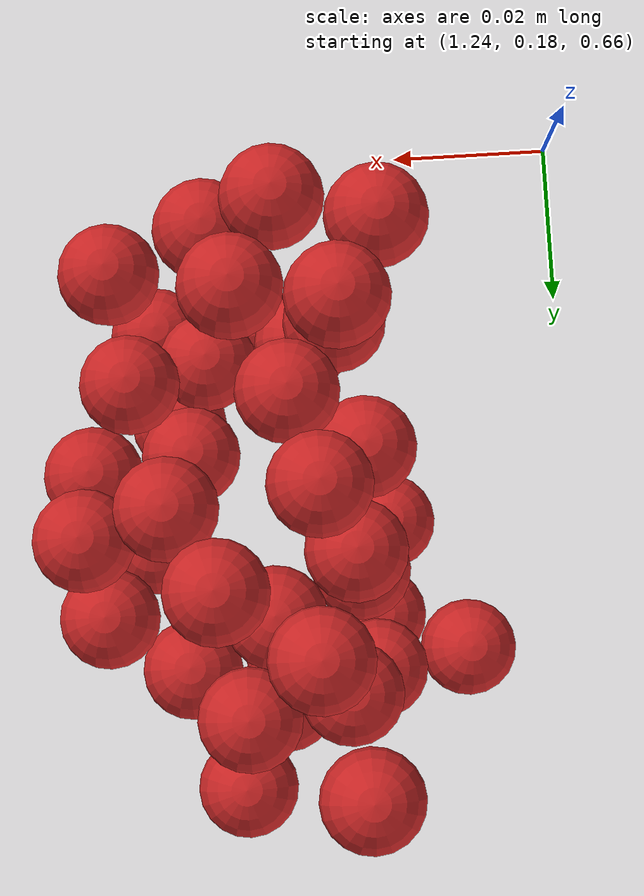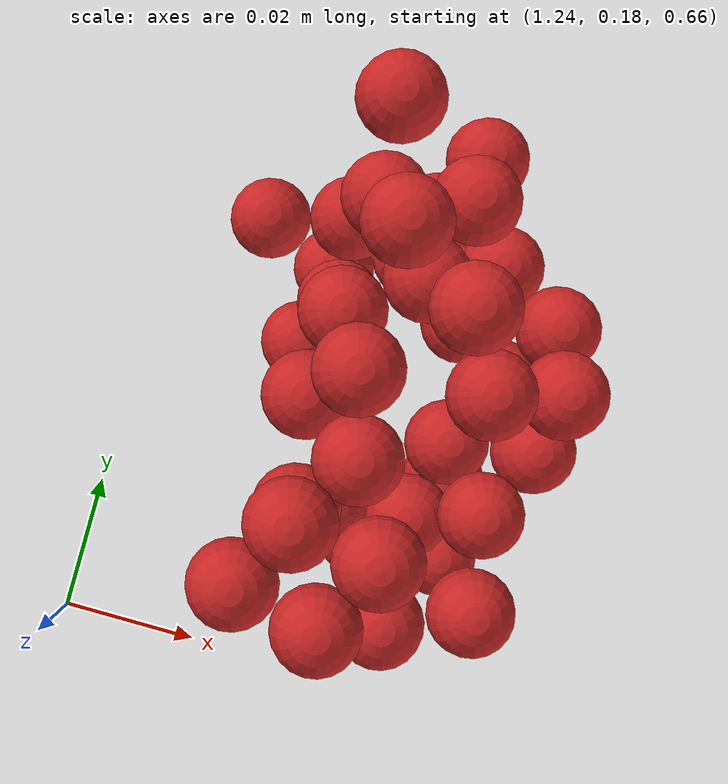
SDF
<sdf version="1.4">
 <world name="default">
  <model name="ground_plane">
   <static>1</static>
   <link name="link">
    <collision name="collision">
     <geometry><plane><normal>0 0 1</normal><size>100 100</size></plane></geometry>
     <surface><friction><ode><mu>100</mu><mu2>50</mu2></ode></friction></surface>
    </collision>
    <visual name="visual">
     <cast_shadows>0</cast_shadows>
     <geometry><plane><normal>0 0 1</normal><size>100 100</size></plane></geometry>
     <material>
      <script><uri>file://media/materials/scripts/gazebo.material</uri><name>Gazebo/Grey</name></script>
     </material>
    </visual>
    <velocity_decay><linear>0</linear><angular>0</angular></velocity_decay>
   </link>
  </model>
  <model name="sphere5">
   <pose>-0.011875 -0.062752 -0.06193 -0.031758 -0.011657 -0.000786</pose>
   <link name="link">
    <pose>1.30014 0.244149 0.722288 0 -0 0</pose>
    <inertial>
     <mass>0.001</mass>
     <inertia><ixx>0.004</ixx><ixy>0</ixy><ixz>0</ixz><iyy>0.004</iyy><iyz>0</iyz><izz>0.004</izz></inertia>
    </inertial>
    <collision name="collision">
     <surface>
      <contact><ode><kp>1e+10</kp><kd>1</kd></ode></contact>
      <friction><ode><mu>0.01</mu><mu2>0.01</mu2></ode></friction>
     </surface>
     <geometry><sphere><radius>0.006</radius></sphere></geometry>
    </collision>
    <visual name="visual">
     <geometry><sphere><radius>0.006</radius></sphere></geometry>
     <material>
      <script><uri>file://media/materials/scripts/gazebo.material</uri><name>Gazebo/Red</name></script>
     </material>
    </visual>
    <velocity_decay><linear>0</linear><angular>0</angular></velocity_decay>
   </link>
   <static>0</static>
  </model>
  <model name="sphere8">
   <pose>-0.009657 -0.049791 -0.053172 0.004137 0.002085 4.5e-05</pose>
   <link name="link">
    <pose>1.30014 0.256149 0.722288 0 -0 0</pose>
    <inertial>
     <mass>0.001</mass>
     <inertia><ixx>0.004</ixx><ixy>0</ixy><ixz>0</ixz><iyy>0.004</iyy><iyz>0</iyz><izz>0.004</izz></inertia>
    </inertial>
    <collision name="collision">
     <surface>
      <contact><ode><kp>1e+10</kp><kd>1</kd></ode></contact>
      <friction><ode><mu>0.01</mu><mu2>0.01</mu2></ode></friction>
     </surface>
     <geometry><sphere><radius>0.006</radius></sphere></geometry>
    </collision>
    <visual name="visual">
     <geometry><sphere><radius>0.006</radius></sphere></geometry>
     <material>
      <script><uri>file://media/materials/scripts/gazebo.material</uri><name>Gazebo/Red</name></script>
     </material>
    </visual>
    <velocity_decay><linear>0</linear><angular>0</angular></velocity_decay>
   </link>
   <static>0</static>
  </model>
  <model name="sphere12">
   <pose>-0.013302 -0.013665 -0.065337 0.000626 0.0014 -0.000924</pose>
   <link name="link">
    <pose>1.27614 0.244149 0.734288 0 -0 0</pose>
    <inertial>
     <mass>0.001</mass>
     <inertia><ixx>0.004</ixx><ixy>0</ixy><ixz>0</ixz><iyy>0.004</iyy><iyz>0</iyz><izz>0.004</izz></inertia>
    </inertial>
    <collision name="collision">
     <surface>
      <contact><ode><kp>1e+10</kp><kd>1</kd></ode></contact>
      <friction><ode><mu>0.01</mu><mu2>0.01</mu2></ode></friction>
     </surface>
     <geometry><sphere><radius>0.006</radius></sphere></geometry>
    </collision>
    <visual name="visual">
     <geometry><sphere><radius>0.006</radius></sphere></geometry>
     <material>
      <script><uri>file://media/materials/scripts/gazebo.material</uri><name>Gazebo/Red</name></script>
     </material>
    </visual>
    <velocity_decay><linear>0</linear><angular>0</angular></velocity_decay>
   </link>
   <static>0</static>
  </model>
  <model name="sphere14">
   <pose>-0.004564 -0.045405 -0.07152 -0.022207 -0.007884 9.3e-05</pose>
   <link name="link">
    <pose>1.30014 0.244149 0.734288 0 -0 0</pose>
    <inertial>
     <mass>0.001</mass>
     <inertia><ixx>0.004</ixx><ixy>0</ixy><ixz>0</ixz><iyy>0.004</iyy><iyz>0</iyz><izz>0.004</izz></inertia>
    </inertial>
    <collision name="collision">
     <surface>
      <contact><ode><kp>1e+10</kp><kd>1</kd></ode></contact>
      <friction><ode><mu>0.01</mu><mu2>0.01</mu2></ode></friction>
     </surface>
     <geometry><sphere><radius>0.006</radius></sphere></geometry>
    </collision>
    <visual name="visual">
     <geometry><sphere><radius>0.006</radius></sphere></geometry>
     <material>
      <script><uri>file://media/materials/scripts/gazebo.material</uri><name>Gazebo/Red</name></script>
     </material>
    </visual>
    <velocity_decay><linear>0</linear><angular>0</angular></velocity_decay>
   </link>
   <static>0</static>
  </model>
  <model name="sphere19">
   <pose>-0.011825 -0.03433 -0.050777 0.003505 -0.000296 -0.001107</pose>
   <link name="link">
    <pose>1.28814 0.232149 0.746288 0 -0 0</pose>
    <inertial>
     <mass>0.001</mass>
     <inertia><ixx>0.004</ixx><ixy>0</ixy><ixz>0</ixz><iyy>0.004</iyy><iyz>0</iyz><izz>0.004</izz></inertia>
    </inertial>
    <collision name="collision">
     <surface>
      <contact><ode><kp>1e+10</kp><kd>1</kd></ode></contact>
      <friction><ode><mu>0.01</mu><mu2>0.01</mu2></ode></friction>
     </surface>
     <geometry><sphere><radius>0.006</radius></sphere></geometry>
    </collision>
    <visual name="visual">
     <geometry><sphere><radius>0.006</radius></sphere></geometry>
     <material>
      <script><uri>file://media/materials/scripts/gazebo.material</uri><name>Gazebo/Red</name></script>
     </material>
    </visual>
    <velocity_decay><linear>0</linear><angular>0</angular></velocity_decay>
   </link>
   <static>0</static>
  </model>
  <model name="sphere20">
   <pose>-0.011569 -0.049023 -0.061031 -0.015507 -0.005207 0.000311</pose>
   <link name="link">
    <pose>1.30014 0.232149 0.746288 0 -0 0</pose>
    <inertial>
     <mass>0.001</mass>
     <inertia><ixx>0.004</ixx><ixy>0</ixy><ixz>0</ixz><iyy>0.004</iyy><iyz>0</iyz><izz>0.004</izz></inertia>
    </inertial>
    <collision name="collision">
     <surface>
      <contact><ode><kp>1e+10</kp><kd>1</kd></ode></contact>
      <friction><ode><mu>0.01</mu><mu2>0.01</mu2></ode></friction>
     </surface>
     <geometry><sphere><radius>0.006</radius></sphere></geometry>
    </collision>
    <visual name="visual">
     <geometry><sphere><radius>0.006</radius></sphere></geometry>
     <material>
      <script><uri>file://media/materials/scripts/gazebo.material</uri><name>Gazebo/Red</name></script>
     </material>
    </visual>
    <velocity_decay><linear>0</linear><angular>0</angular></velocity_decay>
   </link>
   <static>0</static>
  </model>
  <model name="sphere26">
   <pose>-0.009544 -0.028372 -0.052766 -0.002954 -0.001273 -0.00138</pose>
   <link name="link">
    <pose>1.30014 0.256149 0.746288 0 -0 0</pose>
    <inertial>
     <mass>0.001</mass>
     <inertia><ixx>0.004</ixx><ixy>0</ixy><ixz>0</ixz><iyy>0.004</iyy><iyz>0</iyz><izz>0.004</izz></inertia>
    </inertial>
    <collision name="collision">
     <surface>
      <contact><ode><kp>1e+10</kp><kd>1</kd></ode></contact>
      <friction><ode><mu>0.01</mu><mu2>0.01</mu2></ode></friction>
     </surface>
     <geometry><sphere><radius>0.006</radius></sphere></geometry>
    </collision>
    <visual name="visual">
     <geometry><sphere><radius>0.006</radius></sphere></geometry>
     <material>
      <script><uri>file://media/materials/scripts/gazebo.material</uri><name>Gazebo/Red</name></script>
     </material>
    </visual>
    <velocity_decay><linear>0</linear><angular>0</angular></velocity_decay>
   </link>
   <static>0</static>
  </model>
  <model name="sphere27">
   <pose>-0.011428 -0.041118 -0.060171 -0.002115 0.000878 0.00303</pose>
   <link name="link">
    <pose>1.27614 0.232149 0.758288 0 -0 0</pose>
    <inertial>
     <mass>0.001</mass>
     <inertia><ixx>0.004</ixx><ixy>0</ixy><ixz>0</ixz><iyy>0.004</iyy><iyz>0</iyz><izz>0.004</izz></inertia>
    </inertial>
    <collision name="collision">
     <surface>
      <contact><ode><kp>1e+10</kp><kd>1</kd></ode></contact>
      <friction><ode><mu>0.01</mu><mu2>0.01</mu2></ode></friction>
     </surface>
     <geometry><sphere><radius>0.006</radius></sphere></geometry>
    </collision>
    <visual name="visual">
     <geometry><sphere><radius>0.006</radius></sphere></geometry>
     <material>
      <script><uri>file://media/materials/scripts/gazebo.material</uri><name>Gazebo/Red</name></script>
     </material>
    </visual>
    <velocity_decay><linear>0</linear><angular>0</angular></velocity_decay>
   </link>
   <static>0</static>
  </model>
  <model name="sphere35">
   <pose>-0.014164 -0.038417 -0.076132 -0.003633 0.002493 -3.7e-05</pose>
   <link name="link">
    <pose>1.30014 0.256149 0.758288 0 -0 0</pose>
    <inertial>
     <mass>0.001</mass>
     <inertia><ixx>0.004</ixx><ixy>0</ixy><ixz>0</ixz><iyy>0.004</iyy><iyz>0</iyz><izz>0.004</izz></inertia>
    </inertial>
    <collision name="collision">
     <surface>
      <contact><ode><kp>1e+10</kp><kd>1</kd></ode></contact>
      <friction><ode><mu>0.01</mu><mu2>0.01</mu2></ode></friction>
     </surface>
     <geometry><sphere><radius>0.006</radius></sphere></geometry>
    </collision>
    <visual name="visual">
     <geometry><sphere><radius>0.006</radius></sphere></geometry>
     <material>
      <script><uri>file://media/materials/scripts/gazebo.material</uri><name>Gazebo/Red</name></script>
     </material>
    </visual>
    <velocity_decay><linear>0</linear><angular>0</angular></velocity_decay>
   </link>
   <static>0</static>
  </model>
  <model name="sphere36">
   <pose>-0.006579 -0.023408 -0.080876 0.002769 0.00054 0.000353</pose>
   <link name="link">
    <pose>1.27614 0.232149 0.770288 0 -0 0</pose>
    <inertial>
     <mass>0.001</mass>
     <inertia><ixx>0.004</ixx><ixy>0</ixy><ixz>0</ixz><iyy>0.004</iyy><iyz>0</iyz><izz>0.004</izz></inertia>
    </inertial>
    <collision name="collision">
     <surface>
      <contact><ode><kp>1e+10</kp><kd>1</kd></ode></contact>
      <friction><ode><mu>0.01</mu><mu2>0.01</mu2></ode></friction>
     </surface>
     <geometry><sphere><radius>0.006</radius></sphere></geometry>
    </collision>
    <visual name="visual">
     <geometry><sphere><radius>0.006</radius></sphere></geometry>
     <material>
      <script><uri>file://media/materials/scripts/gazebo.material</uri><name>Gazebo/Red</name></script>
     </material>
    </visual>
    <velocity_decay><linear>0</linear><angular>0</angular></velocity_decay>
   </link>
   <static>0</static>
  </model>
  <model name="sphere37">
   <pose>-0.012535 -0.022359 -0.097847 0.003619 -0.002644 1.4e-05</pose>
   <link name="link">
    <pose>1.28814 0.232149 0.770288 0 -0 0</pose>
    <inertial>
     <mass>0.001</mass>
     <inertia><ixx>0.004</ixx><ixy>0</ixy><ixz>0</ixz><iyy>0.004</iyy><iyz>0</iyz><izz>0.004</izz></inertia>
    </inertial>
    <collision name="collision">
     <surface>
      <contact><ode><kp>1e+10</kp><kd>1</kd></ode></contact>
      <friction><ode><mu>0.01</mu><mu2>0.01</mu2></ode></friction>
     </surface>
     <geometry><sphere><radius>0.006</radius></sphere></geometry>
    </collision>
    <visual name="visual">
     <geometry><sphere><radius>0.006</radius></sphere></geometry>
     <material>
      <script><uri>file://media/materials/scripts/gazebo.material</uri><name>Gazebo/Red</name></script>
     </material>
    </visual>
    <velocity_decay><linear>0</linear><angular>0</angular></velocity_decay>
   </link>
   <static>0</static>
  </model>
  <model name="sphere41">
   <pose>-0.013342 -0.032523 -0.096982 0.003618 -0.001785 2e-06</pose>
   <link name="link">
    <pose>1.30014 0.244149 0.770288 0 -0 0</pose>
    <inertial>
     <mass>0.001</mass>
     <inertia><ixx>0.004</ixx><ixy>0</ixy><ixz>0</ixz><iyy>0.004</iyy><iyz>0</iyz><izz>0.004</izz></inertia>
    </inertial>
    <collision name="collision">
     <surface>
      <contact><ode><kp>1e+10</kp><kd>1</kd></ode></contact>
      <friction><ode><mu>0.01</mu><mu2>0.01</mu2></ode></friction>
     </surface>
     <geometry><sphere><radius>0.006</radius></sphere></geometry>
    </collision>
    <visual name="visual">
     <geometry><sphere><radius>0.006</radius></sphere></geometry>
     <material>
      <script><uri>file://media/materials/scripts/gazebo.material</uri><name>Gazebo/Red</name></script>
     </material>
    </visual>
    <velocity_decay><linear>0</linear><angular>0</angular></velocity_decay>
   </link>
   <static>0</static>
  </model>
  <model name="sphere44">
   <pose>-0.002865 -0.01827 -0.087503 -0.002224 0.001246 2.6e-05</pose>
   <link name="link">
    <pose>1.30014 0.256149 0.770288 0 -0 0</pose>
    <inertial>
     <mass>0.001</mass>
     <inertia><ixx>0.004</ixx><ixy>0</ixy><ixz>0</ixz><iyy>0.004</iyy><iyz>0</iyz><izz>0.004</izz></inertia>
    </inertial>
    <collision name="collision">
     <surface>
      <contact><ode><kp>1e+10</kp><kd>1</kd></ode></contact>
      <friction><ode><mu>0.01</mu><mu2>0.01</mu2></ode></friction>
     </surface>
     <geometry><sphere><radius>0.006</radius></sphere></geometry>
    </collision>
    <visual name="visual">
     <geometry><sphere><radius>0.006</radius></sphere></geometry>
     <material>
      <script><uri>file://media/materials/scripts/gazebo.material</uri><name>Gazebo/Red</name></script>
     </material>
    </visual>
    <velocity_decay><linear>0</linear><angular>0</angular></velocity_decay>
   </link>
   <static>0</static>
  </model>
  <model name="sphere45">
   <pose>-0.006239 -0.024067 -0.081926 0.00417 2.4e-05 0.00116</pose>
   <link name="link">
    <pose>1.27614 0.232149 0.782288 0 -0 0</pose>
    <inertial>
     <mass>0.001</mass>
     <inertia><ixx>0.004</ixx><ixy>0</ixy><ixz>0</ixz><iyy>0.004</iyy><iyz>0</iyz><izz>0.004</izz></inertia>
    </inertial>
    <collision name="collision">
     <surface>
      <contact><ode><kp>1e+10</kp><kd>1</kd></ode></contact>
      <friction><ode><mu>0.01</mu><mu2>0.01</mu2></ode></friction>
     </surface>
     <geometry><sphere><radius>0.006</radius></sphere></geometry>
    </collision>
    <visual name="visual">
     <geometry><sphere><radius>0.006</radius></sphere></geometry>
     <material>
      <script><uri>file://media/materials/scripts/gazebo.material</uri><name>Gazebo/Red</name></script>
     </material>
    </visual>
    <velocity_decay><linear>0</linear><angular>0</angular></velocity_decay>
   </link>
   <static>0</static>
  </model>
  <model name="sphere46">
   <pose>-0.005851 -0.023683 -0.085481 0.004042 -0.001298 -0.000793</pose>
   <link name="link">
    <pose>1.28814 0.232149 0.782288 0 -0 0</pose>
    <inertial>
     <mass>0.001</mass>
     <inertia><ixx>0.004</ixx><ixy>0</ixy><ixz>0</ixz><iyy>0.004</iyy><iyz>0</iyz><izz>0.004</izz></inertia>
    </inertial>
    <collision name="collision">
     <surface>
      <contact><ode><kp>1e+10</kp><kd>1</kd></ode></contact>
      <friction><ode><mu>0.01</mu><mu2>0.01</mu2></ode></friction>
     </surface>
     <geometry><sphere><radius>0.006</radius></sphere></geometry>
    </collision>
    <visual name="visual">
     <geometry><sphere><radius>0.006</radius></sphere></geometry>
     <material>
      <script><uri>file://media/materials/scripts/gazebo.material</uri><name>Gazebo/Red</name></script>
     </material>
    </visual>
    <velocity_decay><linear>0</linear><angular>0</angular></velocity_decay>
   </link>
   <static>0</static>
  </model>
  <model name="sphere47">
   <pose>-0.007078 -0.03526 -0.089259 -0.004504 0.003567 -0.000595</pose>
   <link name="link">
    <pose>1.30014 0.232149 0.782288 0 -0 0</pose>
    <inertial>
     <mass>0.001</mass>
     <inertia><ixx>0.004</ixx><ixy>0</ixy><ixz>0</ixz><iyy>0.004</iyy><iyz>0</iyz><izz>0.004</izz></inertia>
    </inertial>
    <collision name="collision">
     <surface>
      <contact><ode><kp>1e+10</kp><kd>1</kd></ode></contact>
      <friction><ode><mu>0.01</mu><mu2>0.01</mu2></ode></friction>
     </surface>
     <geometry><sphere><radius>0.006</radius></sphere></geometry>
    </collision>
    <visual name="visual">
     <geometry><sphere><radius>0.006</radius></sphere></geometry>
     <material>
      <script><uri>file://media/materials/scripts/gazebo.material</uri><name>Gazebo/Red</name></script>
     </material>
    </visual>
    <velocity_decay><linear>0</linear><angular>0</angular></velocity_decay>
   </link>
   <static>0</static>
  </model>
  <model name="sphere48">
   <pose>-0.007125 0.001283 -0.108127 -0.00187 -0.002904 0.000266</pose>
   <link name="link">
    <pose>1.27614 0.244149 0.782288 0 -0 0</pose>
    <inertial>
     <mass>0.001</mass>
     <inertia><ixx>0.004</ixx><ixy>0</ixy><ixz>0</ixz><iyy>0.004</iyy><iyz>0</iyz><izz>0.004</izz></inertia>
    </inertial>
    <collision name="collision">
     <surface>
      <contact><ode><kp>1e+10</kp><kd>1</kd></ode></contact>
      <friction><ode><mu>0.01</mu><mu2>0.01</mu2></ode></friction>
     </surface>
     <geometry><sphere><radius>0.006</radius></sphere></geometry>
    </collision>
    <visual name="visual">
     <geometry><sphere><radius>0.006</radius></sphere></geometry>
     <material>
      <script><uri>file://media/materials/scripts/gazebo.material</uri><name>Gazebo/Red</name></script>
     </material>
    </visual>
    <velocity_decay><linear>0</linear><angular>0</angular></velocity_decay>
   </link>
   <static>0</static>
  </model>
  <model name="sphere49">
   <pose>-0.01318 0.001227 -0.111855 -1.7e-05 0.00232 -0.000195</pose>
   <link name="link">
    <pose>1.28814 0.244149 0.782288 0 -0 0</pose>
    <inertial>
     <mass>0.001</mass>
     <inertia><ixx>0.004</ixx><ixy>0</ixy><ixz>0</ixz><iyy>0.004</iyy><iyz>0</iyz><izz>0.004</izz></inertia>
    </inertial>
    <collision name="collision">
     <surface>
      <contact><ode><kp>1e+10</kp><kd>1</kd></ode></contact>
      <friction><ode><mu>0.01</mu><mu2>0.01</mu2></ode></friction>
     </surface>
     <geometry><sphere><radius>0.006</radius></sphere></geometry>
    </collision>
    <visual name="visual">
     <geometry><sphere><radius>0.006</radius></sphere></geometry>
     <material>
      <script><uri>file://media/materials/scripts/gazebo.material</uri><name>Gazebo/Red</name></script>
     </material>
    </visual>
    <velocity_decay><linear>0</linear><angular>0</angular></velocity_decay>
   </link>
   <static>0</static>
  </model>
  <model name="sphere50">
   <pose>-0.013778 -0.011342 -0.097614 0.002794 0.008325 0.000158</pose>
   <link name="link">
    <pose>1.30014 0.244149 0.782288 0 -0 0</pose>
    <inertial>
     <mass>0.001</mass>
     <inertia><ixx>0.004</ixx><ixy>0</ixy><ixz>0</ixz><iyy>0.004</iyy><iyz>0</iyz><izz>0.004</izz></inertia>
    </inertial>
    <collision name="collision">
     <surface>
      <contact><ode><kp>1e+10</kp><kd>1</kd></ode></contact>
      <friction><ode><mu>0.01</mu><mu2>0.01</mu2></ode></friction>
     </surface>
     <geometry><sphere><radius>0.006</radius></sphere></geometry>
    </collision>
    <visual name="visual">
     <geometry><sphere><radius>0.006</radius></sphere></geometry>
     <material>
      <script><uri>file://media/materials/scripts/gazebo.material</uri><name>Gazebo/Red</name></script>
     </material>
    </visual>
    <velocity_decay><linear>0</linear><angular>0</angular></velocity_decay>
   </link>
   <static>0</static>
  </model>
  <model name="sphere54">
   <pose>-0.002604 -0.004649 -0.096863 0.001439 -0.000989 0.000267</pose>
   <link name="link">
    <pose>1.27614 0.232149 0.794288 0 -0 0</pose>
    <inertial>
     <mass>0.001</mass>
     <inertia><ixx>0.004</ixx><ixy>0</ixy><ixz>0</ixz><iyy>0.004</iyy><iyz>0</iyz><izz>0.004</izz></inertia>
    </inertial>
    <collision name="collision">
     <surface>
      <contact><ode><kp>1e+10</kp><kd>1</kd></ode></contact>
      <friction><ode><mu>0.01</mu><mu2>0.01</mu2></ode></friction>
     </surface>
     <geometry><sphere><radius>0.006</radius></sphere></geometry>
    </collision>
    <visual name="visual">
     <geometry><sphere><radius>0.006</radius></sphere></geometry>
     <material>
      <script><uri>file://media/materials/scripts/gazebo.material</uri><name>Gazebo/Red</name></script>
     </material>
    </visual>
    <velocity_decay><linear>0</linear><angular>0</angular></velocity_decay>
   </link>
   <static>0</static>
  </model>
  <model name="sphere55">
   <pose>-0.011671 -0.014424 -0.10078 0.001366 -0.001113 -0.000726</pose>
   <link name="link">
    <pose>1.28814 0.232149 0.794288 0 -0 0</pose>
    <inertial>
     <mass>0.001</mass>
     <inertia><ixx>0.004</ixx><ixy>0</ixy><ixz>0</ixz><iyy>0.004</iyy><iyz>0</iyz><izz>0.004</izz></inertia>
    </inertial>
    <collision name="collision">
     <surface>
      <contact><ode><kp>1e+10</kp><kd>1</kd></ode></contact>
      <friction><ode><mu>0.01</mu><mu2>0.01</mu2></ode></friction>
     </surface>
     <geometry><sphere><radius>0.006</radius></sphere></geometry>
    </collision>
    <visual name="visual">
     <geometry><sphere><radius>0.006</radius></sphere></geometry>
     <material>
      <script><uri>file://media/materials/scripts/gazebo.material</uri><name>Gazebo/Red</name></script>
     </material>
    </visual>
    <velocity_decay><linear>0</linear><angular>0</angular></velocity_decay>
   </link>
   <static>0</static>
  </model>
  <model name="sphere58">
   <pose>-0.013809 0.000509 -0.095363 -0.000585 -0.00081 0.000663</pose>
   <link name="link">
    <pose>1.28814 0.244149 0.794288 0 -0 0</pose>
    <inertial>
     <mass>0.001</mass>
     <inertia><ixx>0.004</ixx><ixy>0</ixy><ixz>0</ixz><iyy>0.004</iyy><iyz>0</iyz><izz>0.004</izz></inertia>
    </inertial>
    <collision name="collision">
     <surface>
      <contact><ode><kp>1e+10</kp><kd>1</kd></ode></contact>
      <friction><ode><mu>0.01</mu><mu2>0.01</mu2></ode></friction>
     </surface>
     <geometry><sphere><radius>0.006</radius></sphere></geometry>
    </collision>
    <visual name="visual">
     <geometry><sphere><radius>0.006</radius></sphere></geometry>
     <material>
      <script><uri>file://media/materials/scripts/gazebo.material</uri><name>Gazebo/Red</name></script>
     </material>
    </visual>
    <velocity_decay><linear>0</linear><angular>0</angular></velocity_decay>
   </link>
   <static>0</static>
  </model>
  <model name="sphere60">
   <pose>-0.012848 -0.012361 -0.139808 -0.000507 -0.010299 0.00083</pose>
   <link name="link">
    <pose>1.27614 0.256149 0.794288 0 -0 0</pose>
    <inertial>
     <mass>0.001</mass>
     <inertia><ixx>0.004</ixx><ixy>0</ixy><ixz>0</ixz><iyy>0.004</iyy><iyz>0</iyz><izz>0.004</izz></inertia>
    </inertial>
    <collision name="collision">
     <surface>
      <contact><ode><kp>1e+10</kp><kd>1</kd></ode></contact>
      <friction><ode><mu>0.01</mu><mu2>0.01</mu2></ode></friction>
     </surface>
     <geometry><sphere><radius>0.006</radius></sphere></geometry>
    </collision>
    <visual name="visual">
     <geometry><sphere><radius>0.006</radius></sphere></geometry>
     <material>
      <script><uri>file://media/materials/scripts/gazebo.material</uri><name>Gazebo/Red</name></script>
     </material>
    </visual>
    <velocity_decay><linear>0</linear><angular>0</angular></velocity_decay>
   </link>
   <static>0</static>
  </model>
  <model name="sphere62">
   <pose>-0.014461 -0.019144 -0.125668 -0.000469 0.000825 0.000273</pose>
   <link name="link">
    <pose>1.30014 0.256149 0.794288 0 -0 0</pose>
    <inertial>
     <mass>0.001</mass>
     <inertia><ixx>0.004</ixx><ixy>0</ixy><ixz>0</ixz><iyy>0.004</iyy><iyz>0</iyz><izz>0.004</izz></inertia>
    </inertial>
    <collision name="collision">
     <surface>
      <contact><ode><kp>1e+10</kp><kd>1</kd></ode></contact>
      <friction><ode><mu>0.01</mu><mu2>0.01</mu2></ode></friction>
     </surface>
     <geometry><sphere><radius>0.006</radius></sphere></geometry>
    </collision>
    <visual name="visual">
     <geometry><sphere><radius>0.006</radius></sphere></geometry>
     <material>
      <script><uri>file://media/materials/scripts/gazebo.material</uri><name>Gazebo/Red</name></script>
     </material>
    </visual>
    <velocity_decay><linear>0</linear><angular>0</angular></velocity_decay>
   </link>
   <static>0</static>
  </model>
  <model name="sphere64">
   <pose>-0.007975 0.005274 -0.119082 0.00296 -0.000846 0.004481</pose>
   <link name="link">
    <pose>1.28814 0.232149 0.806288 0 -0 0</pose>
    <inertial>
     <mass>0.001</mass>
     <inertia><ixx>0.004</ixx><ixy>0</ixy><ixz>0</ixz><iyy>0.004</iyy><iyz>0</iyz><izz>0.004</izz></inertia>
    </inertial>
    <collision name="collision">
     <surface>
      <contact><ode><kp>1e+10</kp><kd>1</kd></ode></contact>
      <friction><ode><mu>0.01</mu><mu2>0.01</mu2></ode></friction>
     </surface>
     <geometry><sphere><radius>0.006</radius></sphere></geometry>
    </collision>
    <visual name="visual">
     <geometry><sphere><radius>0.006</radius></sphere></geometry>
     <material>
      <script><uri>file://media/materials/scripts/gazebo.material</uri><name>Gazebo/Red</name></script>
     </material>
    </visual>
    <velocity_decay><linear>0</linear><angular>0</angular></velocity_decay>
   </link>
   <static>0</static>
  </model>
  <model name="sphere65">
   <pose>-0.008035 -0.011014 -0.121599 0.005114 0.001898 -0.003701</pose>
   <link name="link">
    <pose>1.30014 0.232149 0.806288 0 -0 0</pose>
    <inertial>
     <mass>0.001</mass>
     <inertia><ixx>0.004</ixx><ixy>0</ixy><ixz>0</ixz><iyy>0.004</iyy><iyz>0</iyz><izz>0.004</izz></inertia>
    </inertial>
    <collision name="collision">
     <surface>
      <contact><ode><kp>1e+10</kp><kd>1</kd></ode></contact>
      <friction><ode><mu>0.01</mu><mu2>0.01</mu2></ode></friction>
     </surface>
     <geometry><sphere><radius>0.006</radius></sphere></geometry>
    </collision>
    <visual name="visual">
     <geometry><sphere><radius>0.006</radius></sphere></geometry>
     <material>
      <script><uri>file://media/materials/scripts/gazebo.material</uri><name>Gazebo/Red</name></script>
     </material>
    </visual>
    <velocity_decay><linear>0</linear><angular>0</angular></velocity_decay>
   </link>
   <static>0</static>
  </model>
  <model name="sphere67">
   <pose>-0.005154 -0.005359 -0.105072 0.001212 0.002107 0.000115</pose>
   <link name="link">
    <pose>1.28814 0.244149 0.806288 0 -0 0</pose>
    <inertial>
     <mass>0.001</mass>
     <inertia><ixx>0.004</ixx><ixy>0</ixy><ixz>0</ixz><iyy>0.004</iyy><iyz>0</iyz><izz>0.004</izz></inertia>
    </inertial>
    <collision name="collision">
     <surface>
      <contact><ode><kp>1e+10</kp><kd>1</kd></ode></contact>
      <friction><ode><mu>0.01</mu><mu2>0.01</mu2></ode></friction>
     </surface>
     <geometry><sphere><radius>0.006</radius></sphere></geometry>
    </collision>
    <visual name="visual">
     <geometry><sphere><radius>0.006</radius></sphere></geometry>
     <material>
      <script><uri>file://media/materials/scripts/gazebo.material</uri><name>Gazebo/Red</name></script>
     </material>
    </visual>
    <velocity_decay><linear>0</linear><angular>0</angular></velocity_decay>
   </link>
   <static>0</static>
  </model>
  <model name="sphere70">
   <pose>-0.009232 -0.010573 -0.126974 -0.005156 -0.001056 0.00061</pose>
   <link name="link">
    <pose>1.28814 0.256149 0.806288 0 -0 0</pose>
    <inertial>
     <mass>0.001</mass>
     <inertia><ixx>0.004</ixx><ixy>0</ixy><ixz>0</ixz><iyy>0.004</iyy><iyz>0</iyz><izz>0.004</izz></inertia>
    </inertial>
    <collision name="collision">
     <surface>
      <contact><ode><kp>1e+10</kp><kd>1</kd></ode></contact>
      <friction><ode><mu>0.01</mu><mu2>0.01</mu2></ode></friction>
     </surface>
     <geometry><sphere><radius>0.006</radius></sphere></geometry>
    </collision>
    <visual name="visual">
     <geometry><sphere><radius>0.006</radius></sphere></geometry>
     <material>
      <script><uri>file://media/materials/scripts/gazebo.material</uri><name>Gazebo/Red</name></script>
     </material>
    </visual>
    <velocity_decay><linear>0</linear><angular>0</angular></velocity_decay>
   </link>
   <static>0</static>
  </model>
  <model name="sphere71">
   <pose>-0.010825 0.008397 -0.135361 0.021795 -0.000704 -0.000577</pose>
   <link name="link">
    <pose>1.30014 0.256149 0.806288 0 -0 0</pose>
    <inertial>
     <mass>0.001</mass>
     <inertia><ixx>0.004</ixx><ixy>0</ixy><ixz>0</ixz><iyy>0.004</iyy><iyz>0</iyz><izz>0.004</izz></inertia>
    </inertial>
    <collision name="collision">
     <surface>
      <contact><ode><kp>1e+10</kp><kd>1</kd></ode></contact>
      <friction><ode><mu>0.01</mu><mu2>0.01</mu2></ode></friction>
     </surface>
     <geometry><sphere><radius>0.006</radius></sphere></geometry>
    </collision>
    <visual name="visual">
     <geometry><sphere><radius>0.006</radius></sphere></geometry>
     <material>
      <script><uri>file://media/materials/scripts/gazebo.material</uri><name>Gazebo/Red</name></script>
     </material>
    </visual>
    <velocity_decay><linear>0</linear><angular>0</angular></velocity_decay>
   </link>
   <static>0</static>
  </model>
  <model name="sphere77">
   <pose>-0.003934 -0.021233 -0.133222 0.000677 0.004116 9e-05</pose>
   <link name="link">
    <pose>1.30014 0.244149 0.818288 0 -0 0</pose>
    <inertial>
     <mass>0.001</mass>
     <inertia><ixx>0.004</ixx><ixy>0</ixy><ixz>0</ixz><iyy>0.004</iyy><iyz>0</iyz><izz>0.004</izz></inertia>
    </inertial>
    <collision name="collision">
     <surface>
      <contact><ode><kp>1e+10</kp><kd>1</kd></ode></contact>
      <friction><ode><mu>0.01</mu><mu2>0.01</mu2></ode></friction>
     </surface>
     <geometry><sphere><radius>0.006</radius></sphere></geometry>
    </collision>
    <visual name="visual">
     <geometry><sphere><radius>0.006</radius></sphere></geometry>
     <material>
      <script><uri>file://media/materials/scripts/gazebo.material</uri><name>Gazebo/Red</name></script>
     </material>
    </visual>
    <velocity_decay><linear>0</linear><angular>0</angular></velocity_decay>
   </link>
   <static>0</static>
  </model>
  <model name="sphere81">
   <pose>-0.009868 0.007319 -0.163116 -0.001551 -0.000504 -0.000143</pose>
   <link name="link">
    <pose>1.27614 0.232149 0.830288 0 -0 0</pose>
    <inertial>
     <mass>0.001</mass>
     <inertia><ixx>0.004</ixx><ixy>0</ixy><ixz>0</ixz><iyy>0.004</iyy><iyz>0</iyz><izz>0.004</izz></inertia>
    </inertial>
    <collision name="collision">
     <surface>
      <contact><ode><kp>1e+10</kp><kd>1</kd></ode></contact>
      <friction><ode><mu>0.01</mu><mu2>0.01</mu2></ode></friction>
     </surface>
     <geometry><sphere><radius>0.006</radius></sphere></geometry>
    </collision>
    <visual name="visual">
     <geometry><sphere><radius>0.006</radius></sphere></geometry>
     <material>
      <script><uri>file://media/materials/scripts/gazebo.material</uri><name>Gazebo/Red</name></script>
     </material>
    </visual>
    <velocity_decay><linear>0</linear><angular>0</angular></velocity_decay>
   </link>
   <static>0</static>
  </model>
  <model name="sphere84">
   <pose>-0.007454 -0.01295 -0.139257 -0.001547 0.000467 0.000937</pose>
   <link name="link">
    <pose>1.27614 0.244149 0.830288 0 -0 0</pose>
    <inertial>
     <mass>0.001</mass>
     <inertia><ixx>0.004</ixx><ixy>0</ixy><ixz>0</ixz><iyy>0.004</iyy><iyz>0</iyz><izz>0.004</izz></inertia>
    </inertial>
    <collision name="collision">
     <surface>
      <contact><ode><kp>1e+10</kp><kd>1</kd></ode></contact>
      <friction><ode><mu>0.01</mu><mu2>0.01</mu2></ode></friction>
     </surface>
     <geometry><sphere><radius>0.006</radius></sphere></geometry>
    </collision>
    <visual name="visual">
     <geometry><sphere><radius>0.006</radius></sphere></geometry>
     <material>
      <script><uri>file://media/materials/scripts/gazebo.material</uri><name>Gazebo/Red</name></script>
     </material>
    </visual>
    <velocity_decay><linear>0</linear><angular>0</angular></velocity_decay>
   </link>
   <static>0</static>
  </model>
  <model name="sphere88">
   <pose>-0.005576 -0.005836 -0.140245 -0.001573 -0.000704 0.000413</pose>
   <link name="link">
    <pose>1.28814 0.256149 0.830288 0 -0 0</pose>
    <inertial>
     <mass>0.001</mass>
     <inertia><ixx>0.004</ixx><ixy>0</ixy><ixz>0</ixz><iyy>0.004</iyy><iyz>0</iyz><izz>0.004</izz></inertia>
    </inertial>
    <collision name="collision">
     <surface>
      <contact><ode><kp>1e+10</kp><kd>1</kd></ode></contact>
      <friction><ode><mu>0.01</mu><mu2>0.01</mu2></ode></friction>
     </surface>
     <geometry><sphere><radius>0.006</radius></sphere></geometry>
    </collision>
    <visual name="visual">
     <geometry><sphere><radius>0.006</radius></sphere></geometry>
     <material>
      <script><uri>file://media/materials/scripts/gazebo.material</uri><name>Gazebo/Red</name></script>
     </material>
    </visual>
    <velocity_decay><linear>0</linear><angular>0</angular></velocity_decay>
   </link>
   <static>0</static>
  </model>
  <model name="sphere95">
   <pose>-0.001553 -0.013628 -0.151486 0.000887 0.001925 0.000782</pose>
   <link name="link">
    <pose>1.30014 0.244149 0.842288 0 -0 0</pose>
    <inertial>
     <mass>0.001</mass>
     <inertia><ixx>0.004</ixx><ixy>0</ixy><ixz>0</ixz><iyy>0.004</iyy><iyz>0</iyz><izz>0.004</izz></inertia>
    </inertial>
    <collision name="collision">
     <surface>
      <contact><ode><kp>1e+10</kp><kd>1</kd></ode></contact>
      <friction><ode><mu>0.01</mu><mu2>0.01</mu2></ode></friction>
     </surface>
     <geometry><sphere><radius>0.006</radius></sphere></geometry>
    </collision>
    <visual name="visual">
     <geometry><sphere><radius>0.006</radius></sphere></geometry>
     <material>
      <script><uri>file://media/materials/scripts/gazebo.material</uri><name>Gazebo/Red</name></script>
     </material>
    </visual>
    <velocity_decay><linear>0</linear><angular>0</angular></velocity_decay>
   </link>
   <static>0</static>
  </model>
  <model name="sphere97">
   <pose>-0.006969 -0.008487 -0.159872 -0.002235 0.004856 0.00858</pose>
   <link name="link">
    <pose>1.28814 0.256149 0.842288 0 -0 0</pose>
    <inertial>
     <mass>0.001</mass>
     <inertia><ixx>0.004</ixx><ixy>0</ixy><ixz>0</ixz><iyy>0.004</iyy><iyz>0</iyz><izz>0.004</izz></inertia>
    </inertial>
    <collision name="collision">
     <surface>
      <contact><ode><kp>1e+10</kp><kd>1</kd></ode></contact>
      <friction><ode><mu>0.01</mu><mu2>0.01</mu2></ode></friction>
     </surface>
     <geometry><sphere><radius>0.006</radius></sphere></geometry>
    </collision>
    <visual name="visual">
     <geometry><sphere><radius>0.006</radius></sphere></geometry>
     <material>
      <script><uri>file://media/materials/scripts/gazebo.material</uri><name>Gazebo/Red</name></script>
     </material>
    </visual>
    <velocity_decay><linear>0</linear><angular>0</angular></velocity_decay>
   </link>
   <static>0</static>
  </model>
  <model name="sphere99">
   <pose>-0.005571 0.003911 -0.180321 -0.000163 -0.003134 -0.000658</pose>
   <link name="link">
    <pose>1.27614 0.232149 0.854288 0 -0 0</pose>
    <inertial>
     <mass>0.001</mass>
     <inertia><ixx>0.004</ixx><ixy>0</ixy><ixz>0</ixz><iyy>0.004</iyy><iyz>0</iyz><izz>0.004</izz></inertia>
    </inertial>
    <collision name="collision">
     <surface>
      <contact><ode><kp>1e+10</kp><kd>1</kd></ode></contact>
      <friction><ode><mu>0.01</mu><mu2>0.01</mu2></ode></friction>
     </surface>
     <geometry><sphere><radius>0.006</radius></sphere></geometry>
    </collision>
    <visual name="visual">
     <geometry><sphere><radius>0.006</radius></sphere></geometry>
     <material>
      <script><uri>file://media/materials/scripts/gazebo.material</uri><name>Gazebo/Red</name></script>
     </material>
    </visual>
    <velocity_decay><linear>0</linear><angular>0</angular></velocity_decay>
   </link>
   <static>0</static>
  </model>
  <model name="sphere105">
   <pose>-0.007028 -0.007774 -0.163734 -0.002782 0.001065 -0.000679</pose>
   <link name="link">
    <pose>1.27614 0.256149 0.854288 0 -0 0</pose>
    <inertial>
     <mass>0.001</mass>
     <inertia><ixx>0.004</ixx><ixy>0</ixy><ixz>0</ixz><iyy>0.004</iyy><iyz>0</iyz><izz>0.004</izz></inertia>
    </inertial>
    <collision name="collision">
     <surface>
      <contact><ode><kp>1e+10</kp><kd>1</kd></ode></contact>
      <friction><ode><mu>0.01</mu><mu2>0.01</mu2></ode></friction>
     </surface>
     <geometry><sphere><radius>0.006</radius></sphere></geometry>
    </collision>
    <visual name="visual">
     <geometry><sphere><radius>0.006</radius></sphere></geometry>
     <material>
      <script><uri>file://media/materials/scripts/gazebo.material</uri><name>Gazebo/Red</name></script>
     </material>
    </visual>
    <velocity_decay><linear>0</linear><angular>0</angular></velocity_decay>
   </link>
   <static>0</static>
  </model>
  <model name="sphere111">
   <pose>-0.00943 -0.021928 -0.176194 0.000326 0.000479 -0.000101</pose>
   <link name="link">
    <pose>1.27614 0.244149 0.866288 0 -0 0</pose>
    <inertial>
     <mass>0.001</mass>
     <inertia><ixx>0.004</ixx><ixy>0</ixy><ixz>0</ixz><iyy>0.004</iyy><iyz>0</iyz><izz>0.004</izz></inertia>
    </inertial>
    <collision name="collision">
     <surface>
      <contact><ode><kp>1e+10</kp><kd>1</kd></ode></contact>
      <friction><ode><mu>0.01</mu><mu2>0.01</mu2></ode></friction>
     </surface>
     <geometry><sphere><radius>0.006</radius></sphere></geometry>
    </collision>
    <visual name="visual">
     <geometry><sphere><radius>0.006</radius></sphere></geometry>
     <material>
      <script><uri>file://media/materials/scripts/gazebo.material</uri><name>Gazebo/Red</name></script>
     </material>
    </visual>
    <velocity_decay><linear>0</linear><angular>0</angular></velocity_decay>
   </link>
   <static>0</static>
  </model>
  <model name="sphere114">
   <pose>-0.011027 0.007696 -0.166854 0.004051 0.004477 0.000987</pose>
   <link name="link">
    <pose>1.27614 0.256149 0.866288 0 -0 0</pose>
    <inertial>
     <mass>0.001</mass>
     <inertia><ixx>0.004</ixx><ixy>0</ixy><ixz>0</ixz><iyy>0.004</iyy><iyz>0</iyz><izz>0.004</izz></inertia>
    </inertial>
    <collision name="collision">
     <surface>
      <contact><ode><kp>1e+10</kp><kd>1</kd></ode></contact>
      <friction><ode><mu>0.01</mu><mu2>0.01</mu2></ode></friction>
     </surface>
     <geometry><sphere><radius>0.006</radius></sphere></geometry>
    </collision>
    <visual name="visual">
     <geometry><sphere><radius>0.006</radius></sphere></geometry>
     <material>
      <script><uri>file://media/materials/scripts/gazebo.material</uri><name>Gazebo/Red</name></script>
     </material>
    </visual>
    <velocity_decay><linear>0</linear><angular>0</angular></velocity_decay>
   </link>
   <static>0</static>
  </model>
 </world>
</sdf>
